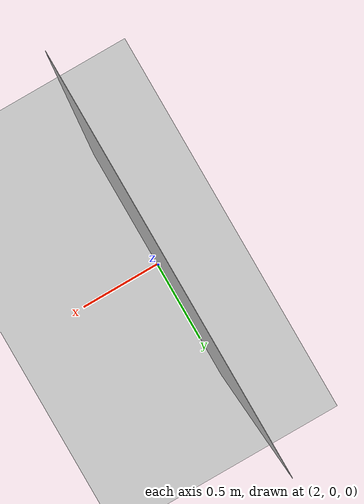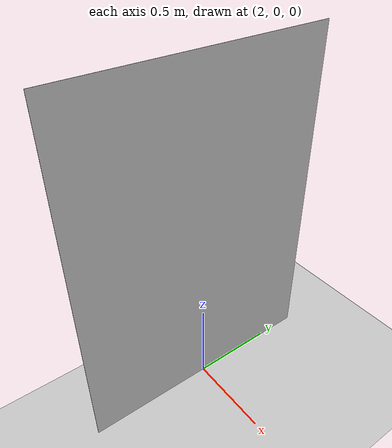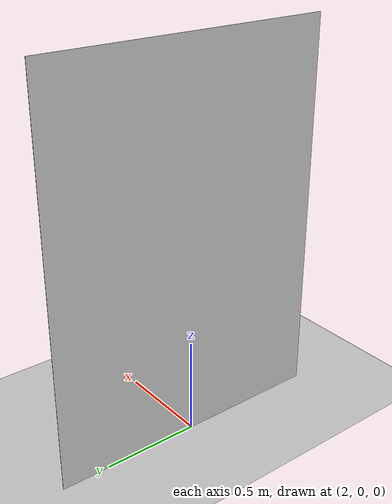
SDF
<?xml version="1.0" ?>
<sdf version="1.6">
  <world name="canvas_demo">
    <gui>
      <camera name="user_camera">
        <pose>-5 0 1 0 0.2 0</pose>
        <view_controller>orbit</view_controller>
      </camera>
    </gui>

    <include>
      <uri>model://sun</uri>
    </include>

    <include>
      <uri>model://ground_plane</uri>
    </include>

    <include>
      <uri>model://canvas_screen</uri>
      <pose>2 0 0 0 0 0</pose>
    </include>
  </world>
</sdf>

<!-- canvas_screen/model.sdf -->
<sdf version="1.6">
  <model name="canvas_screen">
    <static>true</static>

    <link name="screen_link">
      <!-- висота 1 м, дивиться вздовж +X -->
      <pose>0 0 1 0 0 0</pose>

      <visual name="screen_visual">
        <!-- площина 2x1.5 м -->
        <geometry>
          <plane>
            <normal>1 0 0</normal>
            <size>2 1.5</size>
          </plane>
        </geometry>

        <!-- стартовий матеріал не важливий – плагін замінить -->
        <material>
          <ambient>0.7 0.7 0.7 1</ambient>
          <diffuse>0.7 0.7 0.7 1</diffuse>
        </material>

        <plugin name="canvas_plugin" filename="libCanvasPlugin.so">
        <images_dir>model://ground_plane_unique/materials/textures</images_dir>

        <width>1024</width>
        <height>1024</height>

        <interval>1.0</interval>
      </plugin>
      </visual>
    </link>
  </model>
</sdf>
